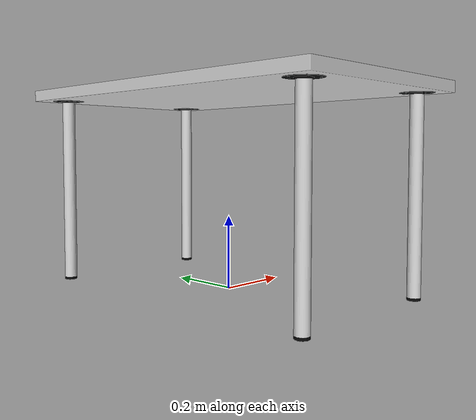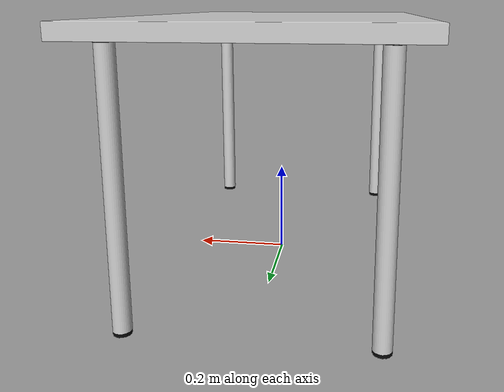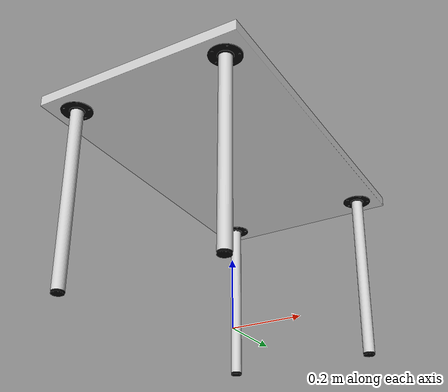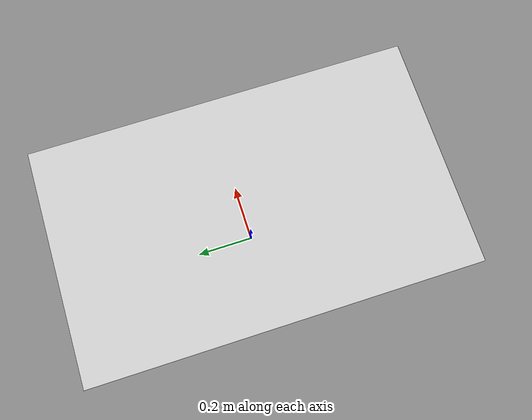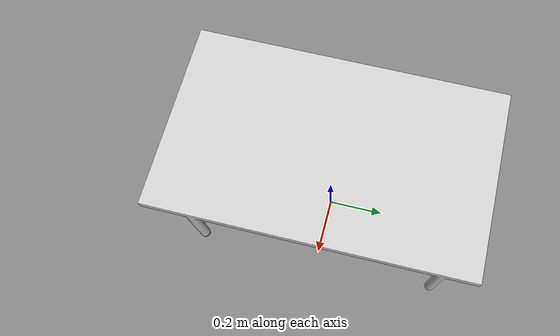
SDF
<?xml version="1.0"?>
<sdf version="1.5">
	<model name="table1">
		<static>true</static>
		<link name="link">
			<pose>0 0 0 0 0 0</pose>
			<collision name="mesh">
				<geometry>
					<mesh>
						<uri>model://linnmon/linnmon.dae</uri>
					</mesh>
				</geometry>
			</collision>
			<visual name="visual">
				<geometry>
					<mesh>
						<uri>model://linnmon/linnmon.dae</uri>
					</mesh>
				</geometry>
			</visual>
		</link>
	</model>
</sdf>
